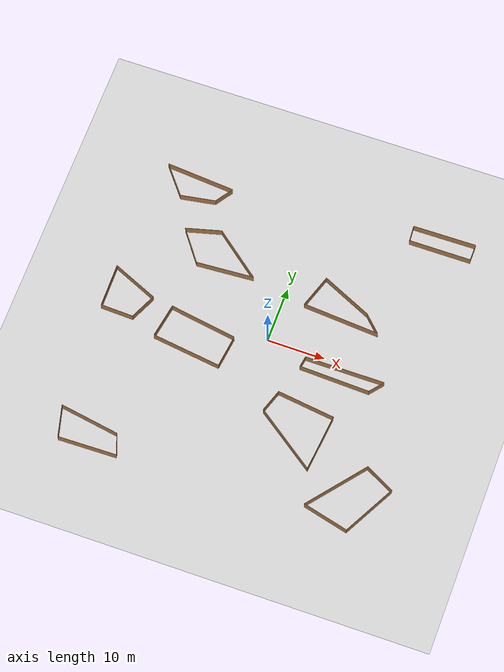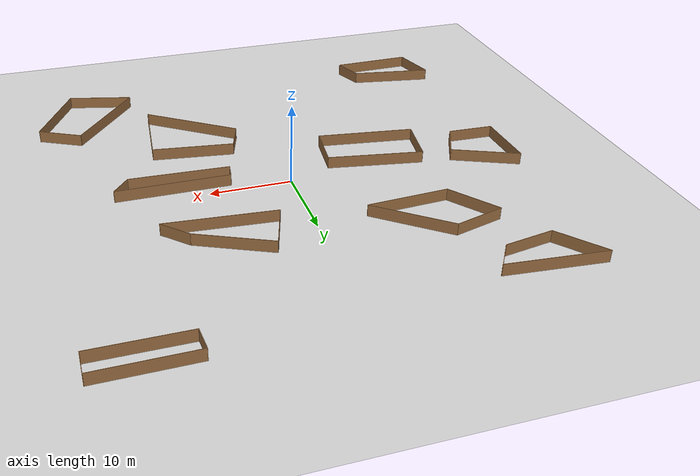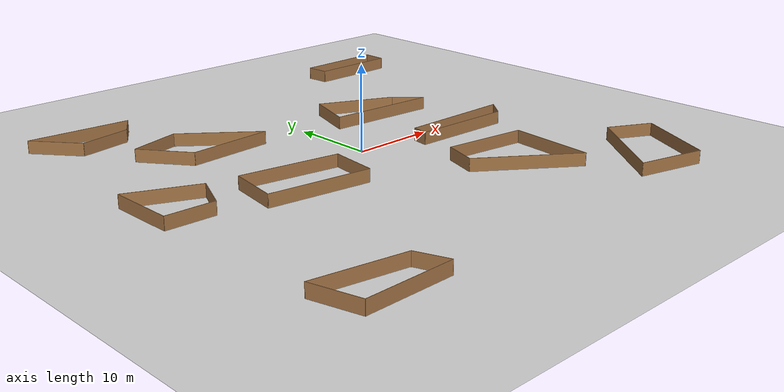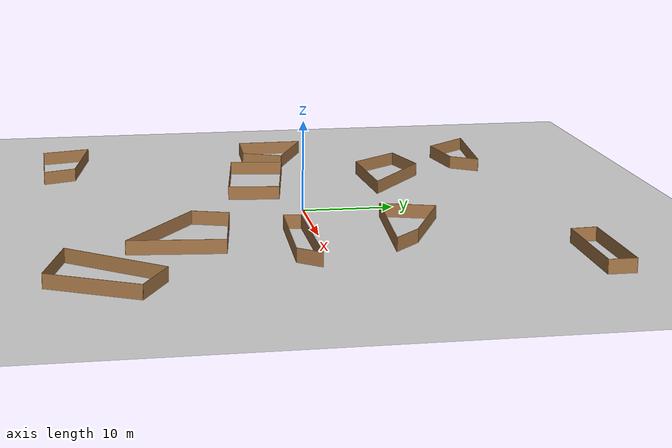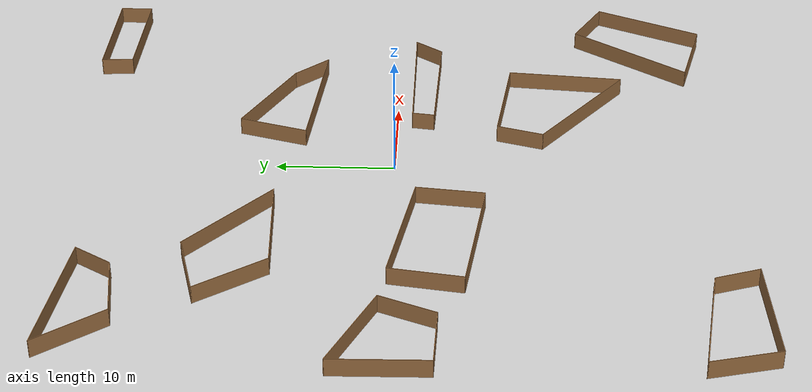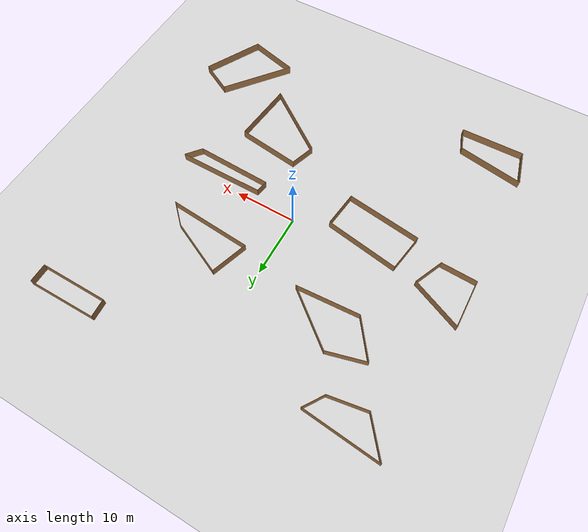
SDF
<sdf version="1.7">
 <world name="default">
  <light name="sun" type="directional">
   <pose>0 0 10 0 -0 0</pose>
   <diffuse>0.8 0.8 0.8 1</diffuse>
   <specular>0.2 0.2 0.2 1</specular>
   <attenuation>
    <range>1000</range>
    <constant>0.9</constant>
    <linear>0.01</linear>
    <quadratic>0.001</quadratic>
   </attenuation>
   <direction>-0.5 0.1 -0.9</direction>
   <spot><inner_angle>0</inner_angle><outer_angle>0</outer_angle><falloff>0</falloff></spot>
  </light>
  <model name="ground_plane">
   <static>1</static>
   <link name="link">
    <collision name="collision">
     <geometry><plane><normal>0 0 1</normal><size>100 100</size></plane></geometry>
     <surface>
      <contact><collide_bitmask>65535</collide_bitmask></contact>
      <friction><ode><mu>100</mu><mu2>50</mu2></ode></friction>
     </surface>
    </collision>
    <visual name="visual">
     <cast_shadows>0</cast_shadows>
     <geometry><plane><normal>0 0 1</normal><size>100 100</size></plane></geometry>
     <material>
      <script><uri>file://media/materials/scripts/gazebo.material</uri><name>Gazebo/Grey</name></script>
     </material>
    </visual>
   </link>
  </model>
  <gravity>0 0 -9.8</gravity>
  <magnetic_field>6e-06 2.3e-05 -4.2e-05</magnetic_field>
  <atmosphere type="adiabatic"/>
  <physics type="ode">
   <max_step_size>0.001</max_step_size>
   <real_time_factor>1</real_time_factor>
   <real_time_update_rate>1000</real_time_update_rate>
  </physics>
  <scene><ambient>0.4 0.4 0.4 1</ambient><background>0.7 0.7 0.7 1</background><shadows>1</shadows></scene>
  <spherical_coordinates>
   <surface_model>EARTH_WGS84</surface_model>
   <latitude_deg>0</latitude_deg>
   <longitude_deg>0</longitude_deg>
   <elevation>0</elevation>
   <heading_deg>0</heading_deg>
  </spherical_coordinates>
  <model name="exp_add">
   <pose>-0.099588 -0.302585 0 0 -0 0</pose>
   <link name="Wall_11">
    <collision name="Wall_11_Collision">
     <geometry><box><size>6.13276 0.05 1.5</size></box></geometry>
     <pose>0 0 0.75 0 -0 0</pose>
    </collision>
    <visual name="Wall_11_Visual">
     <pose>0 0 0.75 0 -0 0</pose>
     <geometry><box><size>6.13276 0.05 1.5</size></box></geometry>
     <material>
      <script><uri>file://media/materials/scripts/gazebo.material</uri><name>Gazebo/Wood</name></script>
      <ambient>1 1 1 1</ambient>
     </material>
     <meta><layer>0</layer></meta>
    </visual>
    <pose>-19.9004 20.8026 0 0 -0 0.165149</pose>
   </link>
   <link name="Wall_12">
    <collision name="Wall_12_Collision">
     <geometry><box><size>3.65555 0.05 1.5</size></box></geometry>
     <pose>0 0 0.75 0 -0 0</pose>
    </collision>
    <visual name="Wall_12_Visual">
     <pose>0 0 0.75 0 -0 0</pose>
     <geometry><box><size>3.65555 0.05 1.5</size></box></geometry>
     <material>
      <script><uri>file://media/materials/scripts/gazebo.material</uri><name>Gazebo/Wood</name></script>
      <ambient>1 1 1 1</ambient>
     </material>
     <meta><layer>0</layer></meta>
    </visual>
    <pose>-15.9004 22.8026 0 0 -0 0.982794</pose>
   </link>
   <link name="Wall_13">
    <collision name="Wall_13_Collision">
     <geometry><box><size>12.0916 0.05 1.5</size></box></geometry>
     <pose>0 0 0.75 0 -0 0</pose>
    </collision>
    <visual name="Wall_13_Visual">
     <pose>0 0 0.75 0 -0 0</pose>
     <geometry><box><size>12.0916 0.05 1.5</size></box></geometry>
     <material>
      <script><uri>file://media/materials/scripts/gazebo.material</uri><name>Gazebo/Wood</name></script>
      <ambient>1 1 1 1</ambient>
     </material>
     <meta><layer>0</layer></meta>
    </visual>
    <pose>-20.9004 24.8026 0 0 -0 3.05845</pose>
   </link>
   <link name="Wall_14">
    <collision name="Wall_14_Collision">
     <geometry><box><size>6.45312 0.05 1.5</size></box></geometry>
     <pose>0 0 0.75 0 -0 0</pose>
    </collision>
    <visual name="Wall_14_Visual">
     <pose>0 0 0.75 0 -0 0</pose>
     <geometry><box><size>6.45312 0.05 1.5</size></box></geometry>
     <material>
      <script><uri>file://media/materials/scripts/gazebo.material</uri><name>Gazebo/Wood</name></script>
      <ambient>1 1 1 1</ambient>
     </material>
     <meta><layer>0</layer></meta>
    </visual>
    <pose>-24.9004 22.8026 0 0 -0 -0.896055</pose>
   </link>
   <link name="Wall_16">
    <collision name="Wall_16_Collision">
     <geometry><box><size>10.068 0.05 1.5</size></box></geometry>
     <pose>0 0 0.75 0 -0 0</pose>
    </collision>
    <visual name="Wall_16_Visual">
     <pose>0 0 0.75 0 -0 0</pose>
     <geometry><box><size>10.068 0.05 1.5</size></box></geometry>
     <material>
      <script><uri>file://media/materials/scripts/gazebo.material</uri><name>Gazebo/Wood</name></script>
      <ambient>1 1 1 1</ambient>
     </material>
     <meta><layer>0</layer></meta>
    </visual>
    <pose>-10.9004 9.60258 0 0 -0 0.059928</pose>
   </link>
   <link name="Wall_17">
    <collision name="Wall_17_Collision">
     <geometry><box><size>10.295 0.05 1.5</size></box></geometry>
     <pose>0 0 0.75 0 -0 0</pose>
    </collision>
    <visual name="Wall_17_Visual">
     <pose>0 0 0.75 0 -0 0</pose>
     <geometry><box><size>10.295 0.05 1.5</size></box></geometry>
     <material>
      <script><uri>file://media/materials/scripts/gazebo.material</uri><name>Gazebo/Wood</name></script>
      <ambient>1 1 1 1</ambient>
     </material>
     <meta><layer>0</layer></meta>
    </visual>
    <pose>-9.90041 13.1026 0 0 -0 2.46685</pose>
   </link>
   <link name="Wall_18">
    <collision name="Wall_18_Collision">
     <geometry><box><size>6.25967 0.05 1.5</size></box></geometry>
     <pose>0 0 0.75 0 -0 0</pose>
    </collision>
    <visual name="Wall_18_Visual">
     <pose>0 0 0.75 0 -0 0</pose>
     <geometry><box><size>6.25967 0.05 1.5</size></box></geometry>
     <material>
      <script><uri>file://media/materials/scripts/gazebo.material</uri><name>Gazebo/Wood</name></script>
      <ambient>1 1 1 1</ambient>
     </material>
     <meta><layer>0</layer></meta>
    </visual>
    <pose>-16.9004 15.5026 0 0 -0 -2.88099</pose>
   </link>
   <link name="Wall_19">
    <collision name="Wall_19_Collision">
     <geometry><box><size>6.77012 0.05 1.5</size></box></geometry>
     <pose>0 0 0.75 0 -0 0</pose>
    </collision>
    <visual name="Wall_19_Visual">
     <pose>0 0 0.75 0 -0 0</pose>
     <geometry><box><size>6.77012 0.05 1.5</size></box></geometry>
     <material>
      <script><uri>file://media/materials/scripts/gazebo.material</uri><name>Gazebo/Wood</name></script>
      <ambient>1 1 1 1</ambient>
     </material>
     <meta><layer>0</layer></meta>
    </visual>
    <pose>-17.9004 12.0026 0 0 -0 -0.933248</pose>
   </link>
   <link name="Wall_21">
    <collision name="Wall_21_Collision">
     <geometry><box><size>12.1562 0.05 1.5</size></box></geometry>
     <pose>0 0 0.75 0 -0 0</pose>
    </collision>
    <visual name="Wall_21_Visual">
     <pose>0 0 0.75 0 -0 0</pose>
     <geometry><box><size>12.1562 0.05 1.5</size></box></geometry>
     <material>
      <script><uri>file://media/materials/scripts/gazebo.material</uri><name>Gazebo/Wood</name></script>
      <ambient>1 1 1 1</ambient>
     </material>
     <meta><layer>0</layer></meta>
    </visual>
    <pose>-11.9004 -6.49742 0 0 -0 -0.132552</pose>
   </link>
   <link name="Wall_22">
    <collision name="Wall_22_Collision">
     <geometry><box><size>5.79282 0.05 1.5</size></box></geometry>
     <pose>0 0 0.75 0 -0 0</pose>
    </collision>
    <visual name="Wall_22_Visual">
     <pose>0 0 0.75 0 -0 0</pose>
     <geometry><box><size>5.79282 0.05 1.5</size></box></geometry>
     <material>
      <script><uri>file://media/materials/scripts/gazebo.material</uri><name>Gazebo/Wood</name></script>
      <ambient>1 1 1 1</ambient>
     </material>
     <meta><layer>0</layer></meta>
    </visual>
    <pose>-5.55041 -4.44742 0 0 -0 1.4486</pose>
   </link>
   <link name="Wall_23">
    <collision name="Wall_23_Collision">
     <geometry><box><size>11.9033 0.05 1.5</size></box></geometry>
     <pose>0 0 0.75 0 -0 0</pose>
    </collision>
    <visual name="Wall_23_Visual">
     <pose>0 0 0.75 0 -0 0</pose>
     <geometry><box><size>11.9033 0.05 1.5</size></box></geometry>
     <material>
      <script><uri>file://media/materials/scripts/gazebo.material</uri><name>Gazebo/Wood</name></script>
      <ambient>1 1 1 1</ambient>
     </material>
     <meta><layer>0</layer></meta>
    </visual>
    <pose>-11.0504 -0.647415 0 0 -0 2.98061</pose>
   </link>
   <link name="Wall_24">
    <collision name="Wall_24_Collision">
     <geometry><box><size>6.13276 0.05 1.5</size></box></geometry>
     <pose>0 0 0.75 0 -0 0</pose>
    </collision>
    <visual name="Wall_24_Visual">
     <pose>0 0 0.75 0 -0 0</pose>
     <geometry><box><size>6.13276 0.05 1.5</size></box></geometry>
     <material>
      <script><uri>file://media/materials/scripts/gazebo.material</uri><name>Gazebo/Wood</name></script>
      <ambient>1 1 1 1</ambient>
     </material>
     <meta><layer>0</layer></meta>
    </visual>
    <pose>-17.4004 -2.69741 0 0 -0 -1.73595</pose>
   </link>
   <link name="Wall_26">
    <collision name="Wall_26_Collision">
     <geometry><box><size>12.7327 0.05 1.5</size></box></geometry>
     <pose>0 0 0.75 0 -0 0</pose>
    </collision>
    <visual name="Wall_26_Visual">
     <pose>0 0 0.75 0 -0 0</pose>
     <geometry><box><size>12.7327 0.05 1.5</size></box></geometry>
     <material>
      <script><uri>file://media/materials/scripts/gazebo.material</uri><name>Gazebo/Wood</name></script>
      <ambient>1 1 1 1</ambient>
     </material>
     <meta><layer>0</layer></meta>
    </visual>
    <pose>8.94959 -15.9974 0 0 -0 -0.622999</pose>
   </link>
   <link name="Wall_27">
    <collision name="Wall_27_Collision">
     <geometry><box><size>10.0999 0.05 1.5</size></box></geometry>
     <pose>0 0 0.75 0 -0 0</pose>
    </collision>
    <visual name="Wall_27_Visual">
     <pose>0 0 0.75 0 -0 0</pose>
     <geometry><box><size>10.0999 0.05 1.5</size></box></geometry>
     <material>
      <script><uri>file://media/materials/scripts/gazebo.material</uri><name>Gazebo/Wood</name></script>
      <ambient>1 1 1 1</ambient>
     </material>
     <meta><layer>0</layer></meta>
    </visual>
    <pose>14.5996 -14.6974 0 0 -0 1.47113</pose>
   </link>
   <link name="Wall_28">
    <collision name="Wall_28_Collision">
     <geometry><box><size>10.1341 0.05 1.5</size></box></geometry>
     <pose>0 0 0.75 0 -0 0</pose>
    </collision>
    <visual name="Wall_28_Visual">
     <pose>0 0 0.75 0 -0 0</pose>
     <geometry><box><size>10.1341 0.05 1.5</size></box></geometry>
     <material>
      <script><uri>file://media/materials/scripts/gazebo.material</uri><name>Gazebo/Wood</name></script>
      <ambient>1 1 1 1</ambient>
     </material>
     <meta><layer>0</layer></meta>
    </visual>
    <pose>10.0996 -9.04742 0 0 -0 3.01232</pose>
   </link>
   <link name="Wall_29">
    <collision name="Wall_29_Collision">
     <geometry><box><size>4.16096 0.05 1.5</size></box></geometry>
     <pose>0 0 0.75 0 -0 0</pose>
    </collision>
    <visual name="Wall_29_Visual">
     <pose>0 0 0.75 0 -0 0</pose>
     <geometry><box><size>4.16096 0.05 1.5</size></box></geometry>
     <material>
      <script><uri>file://media/materials/scripts/gazebo.material</uri><name>Gazebo/Wood</name></script>
      <ambient>1 1 1 1</ambient>
     </material>
     <meta><layer>0</layer></meta>
    </visual>
    <pose>4.44959 -10.3474 0 0 -0 -1.89255</pose>
   </link>
   <link name="Wall_31">
    <collision name="Wall_31_Collision">
     <geometry><box><size>13.3875 0.05 1.5</size></box></geometry>
     <pose>0 0 0.75 0 -0 0</pose>
    </collision>
    <visual name="Wall_31_Visual">
     <pose>0 0 0.75 0 -0 0</pose>
     <geometry><box><size>13.3875 0.05 1.5</size></box></geometry>
     <material>
      <script><uri>file://media/materials/scripts/gazebo.material</uri><name>Gazebo/Wood</name></script>
      <ambient>1 1 1 1</ambient>
     </material>
     <meta><layer>0</layer></meta>
    </visual>
    <pose>10.4496 7.60259 0 0 -0 -0.075047</pose>
   </link>
   <link name="Wall_32">
    <collision name="Wall_32_Collision">
     <geometry><box><size>4.0098 0.05 1.5</size></box></geometry>
     <pose>0 0 0.75 0 -0 0</pose>
    </collision>
    <visual name="Wall_32_Visual">
     <pose>0 0 0.75 0 -0 0</pose>
     <geometry><box><size>4.0098 0.05 1.5</size></box></geometry>
     <material>
      <script><uri>file://media/materials/scripts/gazebo.material</uri><name>Gazebo/Wood</name></script>
      <ambient>1 1 1 1</ambient>
     </material>
     <meta><layer>0</layer></meta>
    </visual>
    <pose>15.6996 8.50258 0 0 -0 2.35619</pose>
   </link>
   <link name="Wall_33">
    <collision name="Wall_33_Collision">
     <geometry><box><size>9.53472 0.05 1.5</size></box></geometry>
     <pose>0 0 0.75 0 -0 0</pose>
    </collision>
    <visual name="Wall_33_Visual">
     <pose>0 0 0.75 0 -0 0</pose>
     <geometry><box><size>9.53472 0.05 1.5</size></box></geometry>
     <material>
      <script><uri>file://media/materials/scripts/gazebo.material</uri><name>Gazebo/Wood</name></script>
      <ambient>1 1 1 1</ambient>
     </material>
     <meta><layer>0</layer></meta>
    </visual>
    <pose>9.99959 11.9026 0 0 -0 2.70624</pose>
   </link>
   <link name="Wall_34">
    <collision name="Wall_34_Collision">
     <geometry><box><size>6.15328 0.05 1.5</size></box></geometry>
     <pose>0 0 0.75 0 -0 0</pose>
    </collision>
    <visual name="Wall_34_Visual">
     <pose>0 0 0.75 0 -0 0</pose>
     <geometry><box><size>6.15328 0.05 1.5</size></box></geometry>
     <material>
      <script><uri>file://media/materials/scripts/gazebo.material</uri><name>Gazebo/Wood</name></script>
      <ambient>1 1 1 1</ambient>
     </material>
     <meta><layer>0</layer></meta>
    </visual>
    <pose>4.74959 11.0026 0 0 -0 -1.88737</pose>
   </link>
   <link name="Wall_36">
    <collision name="Wall_36_Collision">
     <geometry><box><size>10.85 0.05 1.5</size></box></geometry>
     <pose>0 0 0.75 0 -0 0</pose>
    </collision>
    <visual name="Wall_36_Visual">
     <pose>0 0 0.75 0 -0 0</pose>
     <geometry><box><size>10.85 0.05 1.5</size></box></geometry>
     <material>
      <script><uri>file://media/materials/scripts/gazebo.material</uri><name>Gazebo/Wood</name></script>
      <ambient>1 1 1 1</ambient>
     </material>
     <meta><layer>0</layer></meta>
    </visual>
    <pose>21.9996 25.3026 0 0 -0 0</pose>
   </link>
   <link name="Wall_37">
    <collision name="Wall_37_Collision">
     <geometry><box><size>2.95 0.05 1.5</size></box></geometry>
     <pose>0 0 0.75 0 -0 0</pose>
    </collision>
    <visual name="Wall_37_Visual">
     <pose>0 0 0.75 0 -0 0</pose>
     <geometry><box><size>2.95 0.05 1.5</size></box></geometry>
     <material>
      <script><uri>file://media/materials/scripts/gazebo.material</uri><name>Gazebo/Wood</name></script>
      <ambient>1 1 1 1</ambient>
     </material>
     <meta><layer>0</layer></meta>
    </visual>
    <pose>27.3996 26.7526 0 0 -0 1.5708</pose>
   </link>
   <link name="Wall_38">
    <collision name="Wall_38_Collision">
     <geometry><box><size>11.0505 0.05 1.5</size></box></geometry>
     <pose>0 0 0.75 0 -0 0</pose>
    </collision>
    <visual name="Wall_38_Visual">
     <pose>0 0 0.75 0 -0 0</pose>
     <geometry><box><size>11.0505 0.05 1.5</size></box></geometry>
     <material>
      <script><uri>file://media/materials/scripts/gazebo.material</uri><name>Gazebo/Wood</name></script>
      <ambient>1 1 1 1</ambient>
     </material>
     <meta><layer>0</layer></meta>
    </visual>
    <pose>21.8996 28.1526 0 0 -0 -3.1325</pose>
   </link>
   <link name="Wall_39">
    <collision name="Wall_39_Collision">
     <geometry><box><size>2.85713 0.05 1.5</size></box></geometry>
     <pose>0 0 0.75 0 -0 0</pose>
    </collision>
    <visual name="Wall_39_Visual">
     <pose>0 0 0.75 0 -0 0</pose>
     <geometry><box><size>2.85713 0.05 1.5</size></box></geometry>
     <material>
      <script><uri>file://media/materials/scripts/gazebo.material</uri><name>Gazebo/Wood</name></script>
      <ambient>1 1 1 1</ambient>
     </material>
     <meta><layer>0</layer></meta>
    </visual>
    <pose>16.4996 26.7026 0 0 -0 -1.49949</pose>
   </link>
   <link name="Wall_41">
    <collision name="Wall_41_Collision">
     <geometry><box><size>5.75351 0.05 1.5</size></box></geometry>
     <pose>0 0 0.75 0 -0 0</pose>
    </collision>
    <visual name="Wall_41_Visual">
     <pose>0 0 0.75 0 -0 0</pose>
     <geometry><box><size>5.75351 0.05 1.5</size></box></geometry>
     <material>
      <script><uri>file://media/materials/scripts/gazebo.material</uri><name>Gazebo/Wood</name></script>
      <ambient>1 1 1 1</ambient>
     </material>
     <meta><layer>0</layer></meta>
    </visual>
    <pose>-25.3504 -3.59741 0 0 -0 -0.035073</pose>
   </link>
   <link name="Wall_42">
    <collision name="Wall_42_Collision">
     <geometry><box><size>4.97443 0.05 1.5</size></box></geometry>
     <pose>0 0 0.75 0 -0 0</pose>
    </collision>
    <visual name="Wall_42_Visual">
     <pose>0 0 0.75 0 -0 0</pose>
     <geometry><box><size>4.97443 0.05 1.5</size></box></geometry>
     <material>
      <script><uri>file://media/materials/scripts/gazebo.material</uri><name>Gazebo/Wood</name></script>
      <ambient>1 1 1 1</ambient>
     </material>
     <meta><layer>0</layer></meta>
    </visual>
    <pose>-21.5004 -1.44741 0 0 -0 1.15257</pose>
   </link>
   <link name="Wall_43">
    <collision name="Wall_43_Collision">
     <geometry><box><size>8.55882 0.05 1.5</size></box></geometry>
     <pose>0 0 0.75 0 -0 0</pose>
    </collision>
    <visual name="Wall_43_Visual">
     <pose>0 0 0.75 0 -0 0</pose>
     <geometry><box><size>8.55882 0.05 1.5</size></box></geometry>
     <material>
      <script><uri>file://media/materials/scripts/gazebo.material</uri><name>Gazebo/Wood</name></script>
      <ambient>1 1 1 1</ambient>
     </material>
     <meta><layer>0</layer></meta>
    </visual>
    <pose>-24.4004 2.50258 0 0 -0 2.73053</pose>
   </link>
   <link name="Wall_44">
    <collision name="Wall_44_Collision">
     <geometry><box><size>7.75065 0.05 1.5</size></box></geometry>
     <pose>0 0 0.75 0 -0 0</pose>
    </collision>
    <visual name="Wall_44_Visual">
     <pose>0 0 0.75 0 -0 0</pose>
     <geometry><box><size>7.75065 0.05 1.5</size></box></geometry>
     <material>
      <script><uri>file://media/materials/scripts/gazebo.material</uri><name>Gazebo/Wood</name></script>
      <ambient>1 1 1 1</ambient>
     </material>
     <meta><layer>0</layer></meta>
    </visual>
    <pose>-28.2504 0.352585 0 0 -0 -1.55781</pose>
   </link>
   <link name="Wall_46">
    <collision name="Wall_46_Collision">
     <geometry><box><size>10.252 0.05 1.5</size></box></geometry>
     <pose>0 0 0.75 0 -0 0</pose>
    </collision>
    <visual name="Wall_46_Visual">
     <pose>0 0 0.75 0 -0 0</pose>
     <geometry><box><size>10.252 0.05 1.5</size></box></geometry>
     <material>
      <script><uri>file://media/materials/scripts/gazebo.material</uri><name>Gazebo/Wood</name></script>
      <ambient>1 1 1 1</ambient>
     </material>
     <meta><layer>0</layer></meta>
    </visual>
    <pose>-21.2004 -28.0974 0 0 -0 0.019605</pose>
   </link>
   <link name="Wall_47">
    <collision name="Wall_47_Collision">
     <geometry><box><size>3.87753 0.05 1.5</size></box></geometry>
     <pose>0 0 0.75 0 -0 0</pose>
    </collision>
    <visual name="Wall_47_Visual">
     <pose>0 0 0.75 0 -0 0</pose>
     <geometry><box><size>3.87753 0.05 1.5</size></box></geometry>
     <material>
      <script><uri>file://media/materials/scripts/gazebo.material</uri><name>Gazebo/Wood</name></script>
      <ambient>1 1 1 1</ambient>
     </material>
     <meta><layer>0</layer></meta>
    </visual>
    <pose>-16.7504 -26.1974 0 0 -0 1.91734</pose>
   </link>
   <link name="Wall_48">
    <collision name="Wall_48_Collision">
     <geometry><box><size>10.4893 0.05 1.5</size></box></geometry>
     <pose>0 0 0.75 0 -0 0</pose>
    </collision>
    <visual name="Wall_48_Visual">
     <pose>0 0 0.75 0 -0 0</pose>
     <geometry><box><size>10.4893 0.05 1.5</size></box></geometry>
     <material>
      <script><uri>file://media/materials/scripts/gazebo.material</uri><name>Gazebo/Wood</name></script>
      <ambient>1 1 1 1</ambient>
     </material>
     <meta><layer>0</layer></meta>
    </visual>
    <pose>-22.5504 -23.5474 0 0 -0 2.97802</pose>
   </link>
   <link name="Wall_49">
    <collision name="Wall_49_Collision">
     <geometry><box><size>5.72539 0.05 1.5</size></box></geometry>
     <pose>0 0 0.75 0 -0 0</pose>
    </collision>
    <visual name="Wall_49_Visual">
     <pose>0 0 0.75 0 -0 0</pose>
     <geometry><box><size>5.72539 0.05 1.5</size></box></geometry>
     <material>
      <script><uri>file://media/materials/scripts/gazebo.material</uri><name>Gazebo/Wood</name></script>
      <ambient>1 1 1 1</ambient>
     </material>
     <meta><layer>0</layer></meta>
    </visual>
    <pose>-27.0004 -25.4474 0 0 -0 -1.32154</pose>
   </link>
   <link name="Wall_51">
    <collision name="Wall_51_Collision">
     <geometry><box><size>8.19923 0.05 1.5</size></box></geometry>
     <pose>0 0 0.75 0 -0 0</pose>
    </collision>
    <visual name="Wall_51_Visual">
     <pose>0 0 0.75 0 -0 0</pose>
     <geometry><box><size>8.19923 0.05 1.5</size></box></geometry>
     <material>
      <script><uri>file://media/materials/scripts/gazebo.material</uri><name>Gazebo/Wood</name></script>
      <ambient>1 1 1 1</ambient>
     </material>
     <meta><layer>0</layer></meta>
    </visual>
    <pose>19.6496 -26.6974 0 0 -0 -0.247955</pose>
   </link>
   <link name="Wall_52">
    <collision name="Wall_52_Collision">
     <geometry><box><size>10.2033 0.05 1.5</size></box></geometry>
     <pose>0 0 0.75 0 -0 0</pose>
    </collision>
    <visual name="Wall_52_Visual">
     <pose>0 0 0.75 0 -0 0</pose>
     <geometry><box><size>10.2033 0.05 1.5</size></box></geometry>
     <material>
      <script><uri>file://media/materials/scripts/gazebo.material</uri><name>Gazebo/Wood</name></script>
      <ambient>1 1 1 1</ambient>
     </material>
     <meta><layer>0</layer></meta>
    </visual>
    <pose>25.9496 -23.1974 0 0 -0 1.08953</pose>
   </link>
   <link name="Wall_53">
    <collision name="Wall_53_Collision">
     <geometry><box><size>5.6856 0.05 1.5</size></box></geometry>
     <pose>0 0 0.75 0 -0 0</pose>
    </collision>
    <visual name="Wall_53_Visual">
     <pose>0 0 0.75 0 -0 0</pose>
     <geometry><box><size>5.6856 0.05 1.5</size></box></geometry>
     <material>
      <script><uri>file://media/materials/scripts/gazebo.material</uri><name>Gazebo/Wood</name></script>
      <ambient>1 1 1 1</ambient>
     </material>
     <meta><layer>0</layer></meta>
    </visual>
    <pose>25.7996 -17.3974 0 0 -0 2.66207</pose>
   </link>
   <link name="Wall_54">
    <collision name="Wall_54_Collision">
     <geometry><box><size>12.2942 0.05 1.5</size></box></geometry>
     <pose>0 0 0.75 0 -0 0</pose>
    </collision>
    <visual name="Wall_54_Visual">
     <pose>0 0 0.75 0 -0 0</pose>
     <geometry><box><size>12.2942 0.05 1.5</size></box></geometry>
     <material>
      <script><uri>file://media/materials/scripts/gazebo.material</uri><name>Gazebo/Wood</name></script>
      <ambient>1 1 1 1</ambient>
     </material>
     <meta><layer>0</layer></meta>
    </visual>
    <pose>19.4996 -20.8974 0 0 -0 -2.24044</pose>
   </link>
   <link name="Wall_56">
    <collision name="Wall_56_Collision">
     <geometry><box><size>12.2587 0.05 1.5</size></box></geometry>
     <pose>0 0 0.75 0 -0 0</pose>
    </collision>
    <visual name="Wall_56_Visual">
     <pose>0 0 0.75 0 -0 0</pose>
     <geometry><box><size>12.2587 0.05 1.5</size></box></geometry>
     <material>
      <script><uri>file://media/materials/scripts/gazebo.material</uri><name>Gazebo/Wood</name></script>
      <ambient>1 1 1 1</ambient>
     </material>
     <meta><layer>0</layer></meta>
    </visual>
    <pose>12.9996 -3.12742 0 0 -0 -0.037687</pose>
   </link>
   <link name="Wall_57">
    <collision name="Wall_57_Collision">
     <geometry><box><size>3.05725 0.05 1.5</size></box></geometry>
     <pose>0 0 0.75 0 -0 0</pose>
    </collision>
    <visual name="Wall_57_Visual">
     <pose>0 0 0.75 0 -0 0</pose>
     <geometry><box><size>3.05725 0.05 1.5</size></box></geometry>
     <material>
      <script><uri>file://media/materials/scripts/gazebo.material</uri><name>Gazebo/Wood</name></script>
      <ambient>1 1 1 1</ambient>
     </material>
     <meta><layer>0</layer></meta>
    </visual>
    <pose>20.0496 -2.19191 0 0 -0 0.886915</pose>
   </link>
   <link name="Wall_58">
    <collision name="Wall_58_Collision">
     <geometry><box><size>13.85 0.05 1.5</size></box></geometry>
     <pose>0 0 0.75 0 -0 0</pose>
    </collision>
    <visual name="Wall_58_Visual">
     <pose>0 0 0.75 0 -0 0</pose>
     <geometry><box><size>13.85 0.05 1.5</size></box></geometry>
     <material>
      <script><uri>file://media/materials/scripts/gazebo.material</uri><name>Gazebo/Wood</name></script>
      <ambient>1 1 1 1</ambient>
     </material>
     <meta><layer>0</layer></meta>
    </visual>
    <pose>14.0996 -1.01191 0 0 -0 3.13949</pose>
   </link>
   <link name="Wall_59">
    <collision name="Wall_59_Collision">
     <geometry><box><size>1.97354 0.05 1.5</size></box></geometry>
     <pose>0 0 0.75 0 -0 0</pose>
    </collision>
    <visual name="Wall_59_Visual">
     <pose>0 0 0.75 0 -0 0</pose>
     <geometry><box><size>1.97354 0.05 1.5</size></box></geometry>
     <material>
      <script><uri>file://media/materials/scripts/gazebo.material</uri><name>Gazebo/Wood</name></script>
      <ambient>1 1 1 1</ambient>
     </material>
     <meta><layer>0</layer></meta>
    </visual>
    <pose>7.04959 -1.94741 0 0 -0 -1.7274</pose>
   </link>
   <static>1</static>
  </model>
 </world>
</sdf>
